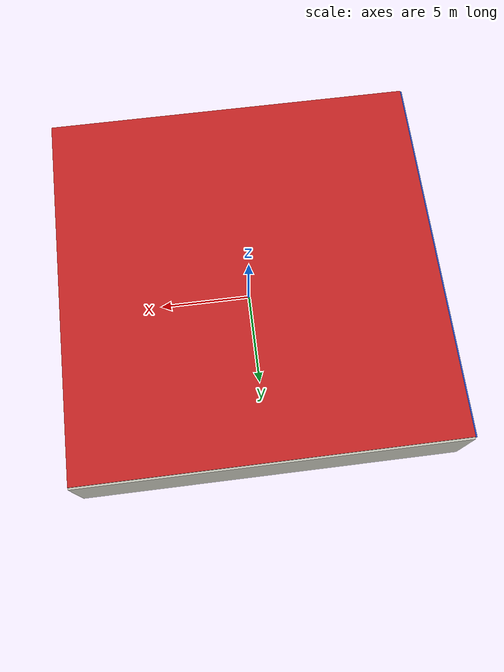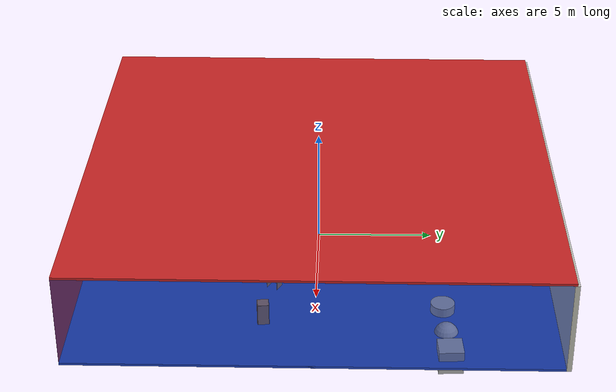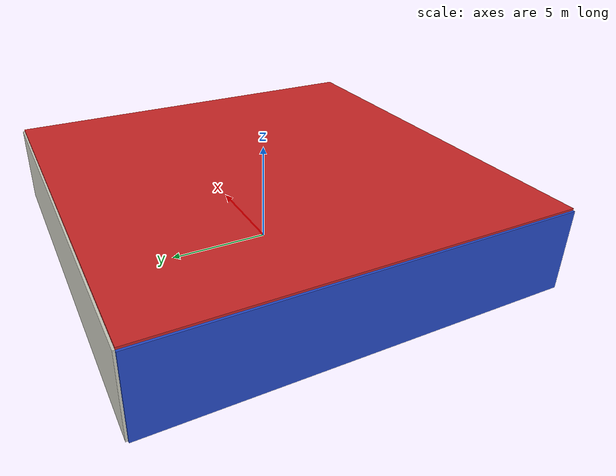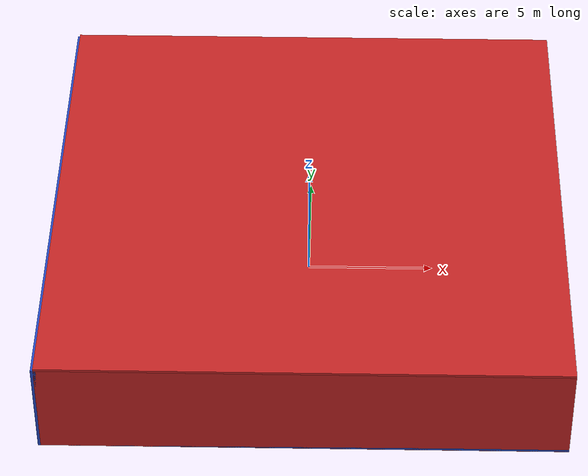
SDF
<sdf version="1.4">
 <world name="default">
  <physics type="ode">
   <max_step_size>0.001</max_step_size>
   <real_time_factor>1</real_time_factor>
   <real_time_update_rate>1000</real_time_update_rate>
   <gravity>0 0 -9.8</gravity>
  </physics>
  <scene><ambient>0.4 0.4 0.4 1</ambient><background>0.7 0.7 0.7 1</background><shadows>1</shadows></scene>
  <model name="Surrounding">
   <static>1</static>
   <link name="Ceiling">
    <collision name="Ceiling_Collision"><geometry><box><size>20 20 0.1</size></box></geometry></collision>
    <visual name="Ceiling_Visual">
     <geometry><box><size>20 20 0.1</size></box></geometry>
     <material>
      <script><uri>file://media/materials/scripts/gazebo.material</uri><name>Gazebo/RedGlow</name></script>
     </material>
    </visual>
    <pose>0 0 4.05 0 0 0</pose>
   </link>
   <link name="Wall_South">
    <collision name="Wall_South_Collision">
     <geometry><box><size>20 0 4</size></box></geometry>
     <pose>0 0 2 0 -0 0</pose>
    </collision>
    <visual name="Wall_South_Visual">
     <pose>0 0 2 0 -0 0</pose>
     <geometry><box><size>20 0 4</size></box></geometry>
     <material>
      <script><uri>file://media/materials/scripts/gazebo.material</uri><name>Gazebo/Red</name></script>
     </material>
    </visual>
    <velocity_decay><linear>0</linear><angular>0</angular></velocity_decay>
    <pose>0 -10 0 0 -0 0</pose>
   </link>
   <link name="Wall_East">
    <collision name="Wall_21_Collision">
     <geometry><box><size>20 0 4</size></box></geometry>
     <pose>0 0 2 0 -0 0</pose>
    </collision>
    <visual name="Wall_21_Visual">
     <pose>0 0 2 0 -0 0</pose>
     <geometry><box><size>20 0 4</size></box></geometry>
     <material>
      <script><uri>file://media/materials/scripts/gazebo.material</uri><name>Gazebo/BlueTransparent</name></script>
     </material>
    </visual>
    <velocity_decay><linear>0</linear><angular>0</angular></velocity_decay>
    <pose>10 0 0 0 -0 1.5708</pose>
   </link>
   <link name="Wall_North">
    <collision name="Wall_22_Collision">
     <geometry><box><size>20 0.2 4</size></box></geometry>
     <pose>0 0 2 0 -0 0</pose>
    </collision>
    <visual name="Wall_22_Visual">
     <pose>0 0 2 0 -0 0</pose>
     <geometry><box><size>20 0.2 4</size></box></geometry>
     <material>
      <script><uri>file://media/materials/scripts/gazebo.material</uri><name>Gazebo/PaintedWall</name></script>
     </material>
    </visual>
    <velocity_decay><linear>0</linear><angular>0</angular></velocity_decay>
    <pose>0 10 0 0 -0 0</pose>
   </link>
   <link name="Wall_West">
    <collision name="Wall_23_Collision">
     <geometry><box><size>20 0.2 4</size></box></geometry>
     <pose>0 0 2 0 -0 0</pose>
    </collision>
    <visual name="Wall_23_Visual">
     <pose>0 0 2 0 -0 0</pose>
     <geometry><box><size>20 0.2 4</size></box></geometry>
     <material>
      <script><uri>file://media/materials/scripts/gazebo.material</uri><name>Gazebo/Blue</name></script>
     </material>
    </visual>
    <velocity_decay><linear>0</linear><angular>0</angular></velocity_decay>
    <pose>-10 0 0 0 0 -1.5708</pose>
   </link>
   <link name="Ground_link">
    <collision name="collision">
     <pose>0 0 .05 0 -0 0</pose>
     <geometry><box><size>20 20 0.1</size></box></geometry>
    </collision>
    <visual name="visual">
     <pose>0 0 .05 0 -0 0</pose>
     <geometry><box><size>20 20 0.1</size></box></geometry>
     <material>
      <script><uri>file://media/materials/scripts/gazebo.material</uri><name>Gazebo/Blue</name></script>
     </material>
    </visual>
   </link>
   <static>1</static>
  </model>
  <spherical_coordinates>
   <surface_model>EARTH_WGS84</surface_model>
   <latitude_deg>0</latitude_deg>
   <longitude_deg>0</longitude_deg>
   <elevation>0</elevation>
   <heading_deg>0</heading_deg>
  </spherical_coordinates>
  <light name="lightball_0" type="diffuse">
   <diffuse>0.8 0.8 0.8 1</diffuse>
   <specular>0.2 0.2 0.2 1</specular>
   <attenuation>
    <range>100</range>
    <constant>0.7</constant>
    <linear>0.01</linear>
    <quadratic>0.001</quadratic>
   </attenuation>
   <direction>-0.5 0.1 -0.9</direction>
   <pose>5.60539035804 6.56979101099 1.50330003314 0 0 0</pose>
  </light>
  <light name="lightball_1" type="diffuse">
   <diffuse>0.8 0.8 0.8 1</diffuse>
   <specular>0.2 0.2 0.2 1</specular>
   <attenuation>
    <range>100</range>
    <constant>0.7</constant>
    <linear>0.01</linear>
    <quadratic>0.001</quadratic>
   </attenuation>
   <direction>-0.5 0.1 -0.9</direction>
   <pose>3.8602105963 3.47506859354 1.38098114295 0 0 0</pose>
  </light>
  <light name="lightball_2" type="diffuse">
   <diffuse>0.8 0.8 0.8 1</diffuse>
   <specular>0.2 0.2 0.2 1</specular>
   <attenuation>
    <range>100</range>
    <constant>0.7</constant>
    <linear>0.01</linear>
    <quadratic>0.001</quadratic>
   </attenuation>
   <direction>-0.5 0.1 -0.9</direction>
   <pose>2.33367868693 -7.83539808744 3.13686154663 0 0 0</pose>
  </light>
  <light name="lightball_3" type="diffuse">
   <diffuse>0.8 0.8 0.8 1</diffuse>
   <specular>0.2 0.2 0.2 1</specular>
   <attenuation>
    <range>100</range>
    <constant>0.7</constant>
    <linear>0.01</linear>
    <quadratic>0.001</quadratic>
   </attenuation>
   <direction>-0.5 0.1 -0.9</direction>
   <pose>7.09222727402 -5.90488390866 1.16865711216 0 0 0</pose>
  </light>
  <light name="lightball_4" type="diffuse">
   <diffuse>0.8 0.8 0.8 1</diffuse>
   <specular>0.2 0.2 0.2 1</specular>
   <attenuation>
    <range>100</range>
    <constant>0.7</constant>
    <linear>0.01</linear>
    <quadratic>0.001</quadratic>
   </attenuation>
   <direction>-0.5 0.1 -0.9</direction>
   <pose>3.31751754903 -4.22407167541 3.72117247828 0 0 0</pose>
  </light>
  <light name="lightball_5" type="diffuse">
   <diffuse>0.8 0.8 0.8 1</diffuse>
   <specular>0.2 0.2 0.2 1</specular>
   <attenuation>
    <range>100</range>
    <constant>0.7</constant>
    <linear>0.01</linear>
    <quadratic>0.001</quadratic>
   </attenuation>
   <direction>-0.5 0.1 -0.9</direction>
   <pose>2.46729580366 0.937467439042 3.4684185808 0 0 0</pose>
  </light>
  <light name="lightball_6" type="diffuse">
   <diffuse>0.8 0.8 0.8 1</diffuse>
   <specular>0.2 0.2 0.2 1</specular>
   <attenuation>
    <range>100</range>
    <constant>0.7</constant>
    <linear>0.01</linear>
    <quadratic>0.001</quadratic>
   </attenuation>
   <direction>-0.5 0.1 -0.9</direction>
   <pose>7.07438256102 8.94078802873 1.13438652247 0 0 0</pose>
  </light>
  <light name="lightball_7" type="diffuse">
   <diffuse>0.8 0.8 0.8 1</diffuse>
   <specular>0.2 0.2 0.2 1</specular>
   <attenuation>
    <range>100</range>
    <constant>0.7</constant>
    <linear>0.01</linear>
    <quadratic>0.001</quadratic>
   </attenuation>
   <direction>-0.5 0.1 -0.9</direction>
   <pose>-0.102872353831 5.29999849902 1.51910599717 0 0 0</pose>
  </light>
  <light name="lightball_8" type="diffuse">
   <diffuse>0.8 0.8 0.8 1</diffuse>
   <specular>0.2 0.2 0.2 1</specular>
   <attenuation>
    <range>100</range>
    <constant>0.7</constant>
    <linear>0.01</linear>
    <quadratic>0.001</quadratic>
   </attenuation>
   <direction>-0.5 0.1 -0.9</direction>
   <pose>-9.55935014345 1.97607113443 3.33487512593 0 0 0</pose>
  </light>
  <light name="lightball_9" type="diffuse">
   <diffuse>0.8 0.8 0.8 1</diffuse>
   <specular>0.2 0.2 0.2 1</specular>
   <attenuation>
    <range>100</range>
    <constant>0.7</constant>
    <linear>0.01</linear>
    <quadratic>0.001</quadratic>
   </attenuation>
   <direction>-0.5 0.1 -0.9</direction>
   <pose>-3.86788919202 -4.68130148814 3.53355415005 0 0 0</pose>
  </light>
  <light name="lightball_10" type="diffuse">
   <diffuse>0.8 0.8 0.8 1</diffuse>
   <specular>0.2 0.2 0.2 1</specular>
   <attenuation>
    <range>100</range>
    <constant>0.7</constant>
    <linear>0.01</linear>
    <quadratic>0.001</quadratic>
   </attenuation>
   <direction>-0.5 0.1 -0.9</direction>
   <pose>-8.38328394067 3.84056327051 3.69702675021 0 0 0</pose>
  </light>
  <light name="lightball_11" type="diffuse">
   <diffuse>0.8 0.8 0.8 1</diffuse>
   <specular>0.2 0.2 0.2 1</specular>
   <attenuation>
    <range>100</range>
    <constant>0.7</constant>
    <linear>0.01</linear>
    <quadratic>0.001</quadratic>
   </attenuation>
   <direction>-0.5 0.1 -0.9</direction>
   <pose>-2.20053492047 -1.23955827384 0.941497358424 0 0 0</pose>
  </light>
  <light name="lightball_12" type="diffuse">
   <diffuse>0.8 0.8 0.8 1</diffuse>
   <specular>0.2 0.2 0.2 1</specular>
   <attenuation>
    <range>100</range>
    <constant>0.7</constant>
    <linear>0.01</linear>
    <quadratic>0.001</quadratic>
   </attenuation>
   <direction>-0.5 0.1 -0.9</direction>
   <pose>1.29580212203 -1.20186406582 2.40758928786 0 0 0</pose>
  </light>
  <include><uri>model://cabinet</uri><pose>-6.5417875274 7.56436426234 0 0 0 1.45585654658</pose></include>
  <include>
   <uri>model://textured_shapes</uri>
   <pose>-3.57397594384 -5.3761174235 0 0 0 0.299586643334</pose>
  </include>
  <include>
   <uri>model://textured_shapes</uri>
   <pose>-4.91136693282 0.891725221769 0 0 0 0.0259451909426</pose>
  </include>
  <include><uri>model://cabinet</uri><pose>-1.8891990221 -7.35685937152 0 0 0 1.06235086798</pose></include>
  <include>
   <uri>model://construction_cone</uri>
   <pose>2.65424018189 -6.80489592677 0 0 0 1.58100504274</pose>
  </include>
  <include><uri>model://cabinet</uri><pose>4.37474501928 -1.78604519829 0 0 0 2.70820910752</pose></include>
  <include><uri>model://cabinet</uri><pose>6.96825343835 -2.12143779097 0 0 0 0.096377080477</pose></include>
  <include>
   <uri>model://textured_shapes</uri>
   <pose>7.56779236661 5.33200041882 0 0 0 1.62475955639</pose>
  </include>
 </world>
</sdf>

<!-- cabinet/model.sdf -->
<sdf version="1.5">
  <model name="cabinet">
    <static>true</static>
    <link name="cabinet_bottom_plate">
      <inertial>
        <pose>0 0 -1 0 0 0</pose>
        <inertia>
          <ixx>2.050000</ixx>
          <ixy>0</ixy>
          <ixz>0</ixz>
          <iyy>2.050000</iyy>
          <iyz>0</iyz>
          <izz>2.050000</izz>
        </inertia>
        <mass>25.000000</mass>
      </inertial>
      <collision name="cabinet_bottom_plate_geom">
        <pose>0 0 0.010000 0 0 0</pose>
        <geometry>
          <box>
            <size>0.450000 0.450000 0.020000</size>
          </box>
        </geometry>
      </collision>
      <visual name="cabinet_bottom_plate_geom_visual">
        <pose>0 0 0.010000 0 0 0</pose>
        <geometry>
          <box>
            <size>0.450000 0.450000 0.020000</size>
          </box>
        </geometry>
        <material>
          <script>
            <uri>model://media/materials/scripts/gazebo.material</uri>
            <name>Gazebo/Wood</name>
          </script>
        </material>
      </visual>
      <collision name="cabinet_bottom_plate_geom_cabinet_back_plate">
        <pose>0.235000 0 0.510000 0 0 0</pose>
        <geometry>
          <box>
            <size>0.020000 0.450000 1.020000</size>
          </box>
        </geometry>
      </collision>
      <visual name="cabinet_bottom_plate_geom_cabinet_back_plate_visual">
        <pose>0.235000 0 0.510000 0 0 0</pose>
        <geometry>
          <box>
            <size>0.020000 0.450000 1.020000</size>
          </box>
        </geometry>
        <material>
          <script>
            <uri>model://media/materials/scripts/gazebo.material</uri>
            <name>Gazebo/Wood</name>
          </script>
        </material>
      </visual>
      <collision name="cabinet_bottom_plate_geom_cabinet_left_plate">
        <pose>0 0.235000 0.510000 0 0 0</pose>
        <geometry>
          <box>
            <size>0.450000 0.020000 1.020000</size>
          </box>
        </geometry>
      </collision>
      <visual name="cabinet_bottom_plate_geom_cabinet_left_plate_visual">
        <pose>0 0.235000 0.510000 0 0 0</pose>
        <geometry>
          <box>
            <size>0.450000 0.020000 1.020000</size>
          </box>
        </geometry>
        <material>
          <script>
            <uri>model://media/materials/scripts/gazebo.material</uri>
            <name>Gazebo/Wood</name>
          </script>
        </material>
      </visual>
      <collision name="cabinet_bottom_plate_geom_cabinet_middle_plate">
        <pose>0 0 0.510000 0 0 0</pose>
        <geometry>
          <box>
            <size>0.450000 0.450000 0.020000</size>
          </box>
        </geometry>
      </collision>
      <visual name="cabinet_bottom_plate_geom_cabinet_middle_plate_visual">
        <pose>0 0 0.510000 0 0 0</pose>
        <geometry>
          <box>
            <size>0.450000 0.450000 0.020000</size>
          </box>
        </geometry>
        <material>
          <script>
            <uri>model://media/materials/scripts/gazebo.material</uri>
            <name>Gazebo/Wood</name>
          </script>
        </material>
      </visual>
      <collision name="cabinet_bottom_plate_geom_cabinet_right_plate">
        <pose>0 -0.235000 0.510000 0 0 0</pose>
        <geometry>
          <box>
            <size>0.450000 0.020000 1.020000</size>
          </box>
        </geometry>
      </collision>
      <visual name="cabinet_bottom_plate_geom_cabinet_right_plate_visual">
        <pose>0 -0.235000 0.510000 0 0 0</pose>
        <geometry>
          <box>
            <size>0.450000 0.020000 1.020000</size>
          </box>
        </geometry>
        <material>
          <script>
            <uri>model://media/materials/scripts/gazebo.material</uri>
            <name>Gazebo/Wood</name>
          </script>
        </material>
      </visual>
      <collision name="cabinet_bottom_plate_geom_cabinet_top_plate">
        <pose>0 0 1.010000 0 0 0</pose>
        <geometry>
          <box>
            <size>0.450000 0.450000 0.020000</size>
          </box>
        </geometry>
      </collision>
      <visual name="cabinet_bottom_plate_geom_cabinet_top_plate_visual">
        <pose>0 0 1.010000 0 0 0</pose>
        <geometry>
          <box>
            <size>0.450000 0.450000 0.020000</size>
          </box>
        </geometry>
        <material>
          <script>
            <uri>model://media/materials/scripts/gazebo.material</uri>
            <name>Gazebo/Wood</name>
          </script>
        </material>
      </visual>
    </link>
  </model>
</sdf>

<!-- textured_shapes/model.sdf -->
<sdf version="1.6">
  <model name="textured_shapes">
    <pose>0 0 0.5 0 0 0</pose>
    <link name="box">
      <pose>0 -1.5 0 0 0 0</pose>
      <collision name="collision">
        <geometry>
          <box>
            <size>1 1 1</size>
          </box>
        </geometry>
      </collision>
      <visual name="visual">
        <geometry>
          <box>
            <size>1 1 1</size>
          </box>
        </geometry>
        <material>
          <script>
            <uri>model://../model_source/models/textured_shapes/materials/scripts</uri>
            <uri>model://../model_source/models/textured_shapes/materials/textures</uri>
            <name>TexturedShape/Squares</name>
          </script>
        </material>
      </visual>
    </link>
    <link name="sphere">
      <collision name="collision">
        <geometry>
          <sphere>
            <radius>0.5</radius>
          </sphere>
        </geometry>
      </collision>
      <visual name="visual">
        <geometry>
          <sphere>
            <radius>0.5</radius>
          </sphere>
        </geometry>
        <material>
          <script>
            <uri>model://../model_source/models/textured_shapes/materials/scripts</uri>
            <uri>model://../model_source/models/textured_shapes/materials/textures</uri>
            <name>TexturedShape/Squares</name>
          </script>
        </material>
      </visual>
    </link>
    <link name="cylinder">
      <pose>0 1.5 0 0 0 0</pose>
      <collision name="collision">
        <geometry>
          <cylinder>
            <radius>0.5</radius>
            <length>1</length>
          </cylinder>
        </geometry>
      </collision>
      <visual name="visual">
        <geometry>
          <cylinder>
            <radius>0.5</radius>
            <length>1</length>
          </cylinder>
        </geometry>
        <material>
          <script>
            <uri>model://../model_source/models/textured_shapes/materials/scripts</uri>
            <uri>model://../model_source/models/textured_shapes/materials/textures</uri>
            <name>TexturedShape/Squares</name>
          </script>
        </material>
      </visual>
    </link>
  </model>
</sdf>

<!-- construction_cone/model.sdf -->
<sdf version="1.5">
  <model name="Construction Cone">
    <link name="link">
      <collision name="collision">
        <geometry>
          <mesh>
            <scale>10 10 10</scale>
            <uri>file://isr-testbed/construction_cone/meshes/construction_cone.dae</uri>
          </mesh>
        </geometry>
      </collision>
      <visual name="visual">
        <geometry>
          <mesh>
            <scale>10 10 10</scale>
            <uri>file://isr-testbed/construction_cone/meshes/construction_cone.dae</uri>
          </mesh>
        </geometry>
      </visual>
    </link>
  </model>
</sdf>
